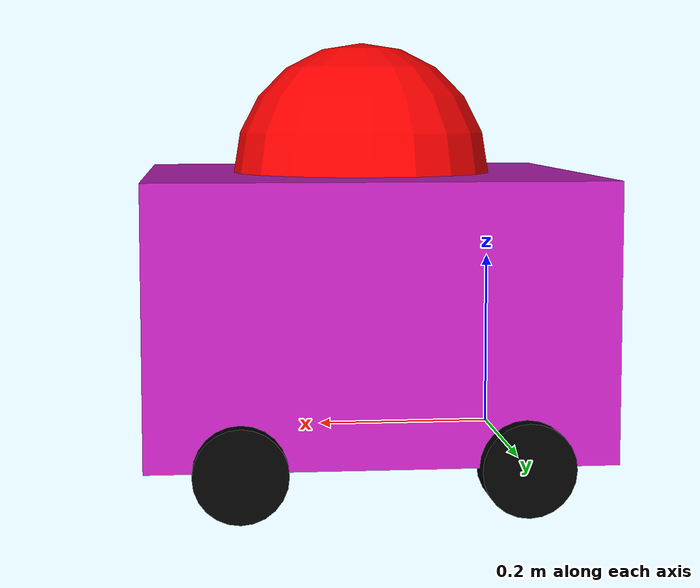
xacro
<?xml version="1.0"?>
<robot xmlns:xacro="http://www.ros.org/wiki/xacro">

    <!-- Include inertial macros for predefined calculations -->
    <xacro:include filename="inertial_macros.xacro"/>

    <!-- Define material color rgba at external files -->
    <xacro:include filename="material_color.xacro"/>

    <!-- Base link is the main coordinate frame -->
    <link name="base_link"/>

    <!-- Chassis Joint -->
    <joint name="chassis_joint" type="fixed">
        <parent link="base_link"/>
        <child link="chassis"/>
        <origin xyz="-0.1 0 0"/>
    </joint>

    <!-- Chassis Link -->
    <link name="chassis">
        <visual>
            <origin xyz="0.25 0 0.15"/>
            <geometry>
                <box size="0.5 0.5 0.3"/>
            </geometry>
            <material name="purple"/>
        </visual>
        <collision>
            <origin xyz="0.25 0 0.15"/>
            <geometry>
                <box size="0.5 0.5 0.3"/>
            </geometry>
        </collision>
        <xacro:inertial_box mass="1.0" x="0.5" y="0.5" z="0.3">
            <origin xyz="0.25 0 0.15" rpy="0 0 0"/>
        </xacro:inertial_box>
    </link>

    <!-- to visualize color attributes in Gazebo simulator-->
    <gazebo reference="chassis">
        <material>Gazebo/Purple</material>
    </gazebo>

    <!-- Four-Wheel Configuration -->

    <!-- Front Left Wheel -->
    <joint name="front_left_wheel_joint" type="continuous">
        <parent link="base_link"/>
        <child link="front_left_wheel"/>
        <origin xyz="0.3 0.25 0" rpy="-${pi/2} 0 0"/>
        <axis xyz="0 0 1"/>
    </joint>

    <link name="front_left_wheel">
        <visual>
            <geometry>
                <cylinder radius="0.05" length="0.04"/>
            </geometry>
            <material name="black"/>
        </visual>
        <collision>
            <geometry>
                <cylinder radius="0.05" length="0.04"/>
            </geometry>
        </collision>
        <xacro:inertial_cylinder mass="0.1" length="0.04" radius="0.05">
            <origin xyz="0 0 0" rpy="0 0 0"/>
        </xacro:inertial_cylinder>
    </link>

    <gazebo reference="front_left_wheel">
        <material>Gazebo/Black</material>
    </gazebo>

    <!-- Front Right Wheel -->
    <joint name="front_right_wheel_joint" type="continuous">
        <parent link="base_link"/>
        <child link="front_right_wheel"/>
        <origin xyz="0.3 -0.25 0" rpy="${pi/2} 0 0"/>
        <axis xyz="0 0 -1"/>
    </joint>

    <link name="front_right_wheel">
        <visual>
            <geometry>
                <cylinder radius="0.05" length="0.04"/>
            </geometry>
            <material name="black"/>
        </visual>
        <collision>
            <geometry>
                <cylinder radius="0.05" length="0.04"/>
            </geometry>
        </collision>
        <xacro:inertial_cylinder mass="0.1" length="0.04" radius="0.05">
            <origin xyz="0 0 0" rpy="0 0 0"/>
        </xacro:inertial_cylinder>
    </link>

    <gazebo reference="front_right_wheel">
        <material>Gazebo/Black</material>
    </gazebo>

    <!-- Rear Left Wheel -->
    <joint name="rear_left_wheel_joint" type="continuous">
        <parent link="base_link"/>
        <child link="rear_left_wheel"/>
        <origin xyz="0 0.25 0" rpy="-${pi/2} 0 0"/>
        <axis xyz="0 0 1"/>
    </joint>

    <link name="rear_left_wheel">
        <visual>
            <geometry>
                <cylinder radius="0.05" length="0.04"/>
            </geometry>
            <material name="black"/>
        </visual>
        <collision>
            <geometry>
                <cylinder radius="0.05" length="0.04"/>
            </geometry>
        </collision>
        <xacro:inertial_cylinder mass="0.1" length="0.04" radius="0.05">
            <origin xyz="0 0 0" rpy="0 0 0"/>
        </xacro:inertial_cylinder>
    </link>

    <gazebo reference="rear_left_wheel">
        <material>Gazebo/Black</material>
    </gazebo>

    <!-- Rear Right Wheel -->
    <joint name="rear_right_wheel_joint" type="continuous">
        <parent link="base_link"/>
        <child link="rear_right_wheel"/>
        <origin xyz="0 -0.25 0" rpy="${pi/2} 0 0"/>
        <axis xyz="0 0 1"/>
    </joint>

    <link name="rear_right_wheel">
        <visual>
            <geometry>
                <cylinder radius="0.05" length="0.04"/>
            </geometry>
            <material name="black"/>
        </visual>
        <collision>
            <geometry>
                <cylinder radius="0.05" length="0.04"/>
            </geometry>
        </collision>
        <xacro:inertial_cylinder mass="0.1" length="0.04" radius="0.05">
            <origin xyz="0 0 0" rpy="0 0 0"/>
        </xacro:inertial_cylinder>
    </link>

    <gazebo reference="rear_right_wheel">
        <material>Gazebo/Black</material>
    </gazebo>

    <!-- TODO: When using prismatic joint, not displayed properly in rviz (w/ gazebo) -->
    <joint name="top_hemisphere_joint" type="fixed">
        <parent link="base_link"/>
        <child link="top_hemisphere"/>
        <origin xyz="0.15 0 0.3"/>
    </joint>

     <!-- Semi-Hemisphere on Top with Sliding X-Direction Capability -->
     <link name="top_hemisphere">
        <visual>
            <origin xyz="0 0 0"/>
            <geometry>
                <sphere radius="0.15"/>
            </geometry>
            <material name="red"/>
        </visual>
        <collision>
            <origin xyz="0 0 0"/>
            <geometry>
                <sphere radius="0.15"/>
            </geometry>
        </collision>
        <xacro:inertial_sphere mass="0.2" radius="0.15">
            <origin xyz="0 0 0" rpy="0 0 0"/>
        </xacro:inertial_sphere>
    </link>

    <gazebo reference="top_hemisphere">
        <material>Gazebo/Red</material>
    </gazebo>

</robot>

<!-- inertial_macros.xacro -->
<!-- From https://github.com/joshnewans/articubot_one/blob/d5aa5e9bc9039073c0d8fd7fe426e170be79c087/description/inertial_macros.xacro-->

<robot xmlns:xacro="http://www.ros.org/wiki/xacro" >

    <!-- Specify some standard inertial calculations https://en.wikipedia.org/wiki/List_of_moments_of_inertia -->
    <!-- These make use of xacro's mathematical functionality -->

    <xacro:macro name="inertial_sphere" params="mass radius *origin">
        <inertial>
            <xacro:insert_block name="origin"/>
            <mass value="${mass}" />
            <inertia ixx="${(2/5) * mass * (radius*radius)}" ixy="0.0" ixz="0.0"
                    iyy="${(2/5) * mass * (radius*radius)}" iyz="0.0"
                    izz="${(2/5) * mass * (radius*radius)}" />
        </inertial>
    </xacro:macro>

    <xacro:macro name="inertial_box" params="mass x y z *origin">
        <inertial>
            <xacro:insert_block name="origin"/>
            <mass value="${mass}" />
            <inertia ixx="${(1/12) * mass * (y*y+z*z)}" ixy="0.0" ixz="0.0"
                    iyy="${(1/12) * mass * (x*x+z*z)}" iyz="0.0"
                    izz="${(1/12) * mass * (x*x+y*y)}" />
        </inertial>
    </xacro:macro>

    <xacro:macro name="inertial_cylinder" params="mass length radius *origin">
        <inertial>
            <xacro:insert_block name="origin"/>
            <mass value="${mass}" />
            <inertia ixx="${(1/12) * mass * (3*radius*radius + length*length)}" ixy="0.0" ixz="0.0"
                    iyy="${(1/12) * mass * (3*radius*radius + length*length)}" iyz="0.0"
                    izz="${(1/2) * mass * (radius*radius)}" />
        </inertial>
    </xacro:macro>

</robot>

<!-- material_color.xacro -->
<robot xmlns:xacro="http://www.ros.org/wiki/xacro" >

    <!-- Define materials -->
    <material name="white">
        <color rgba="1 1 1 1"/>
    </material>

    <material name="orange">
        <color rgba="1 0.3 0.1 1"/>
    </material>

    <material name="blue">
        <color rgba="0.2 0.2 1 1"/>
    </material>

    <material name="black">
        <color rgba="0 0 0 1"/>
    </material>

    <material name="red">
        <color rgba="1 0 0 1"/>
    </material>

    <material name="purple">
        <color rgba="0.749 0.122 0.729 1"/>
    </material>

</robot>
